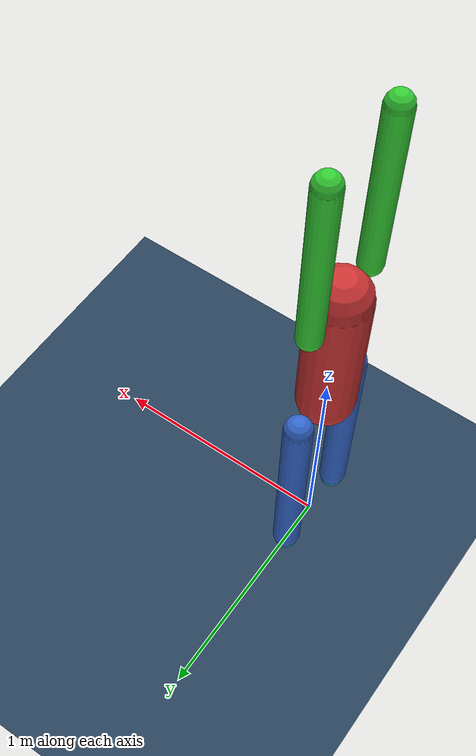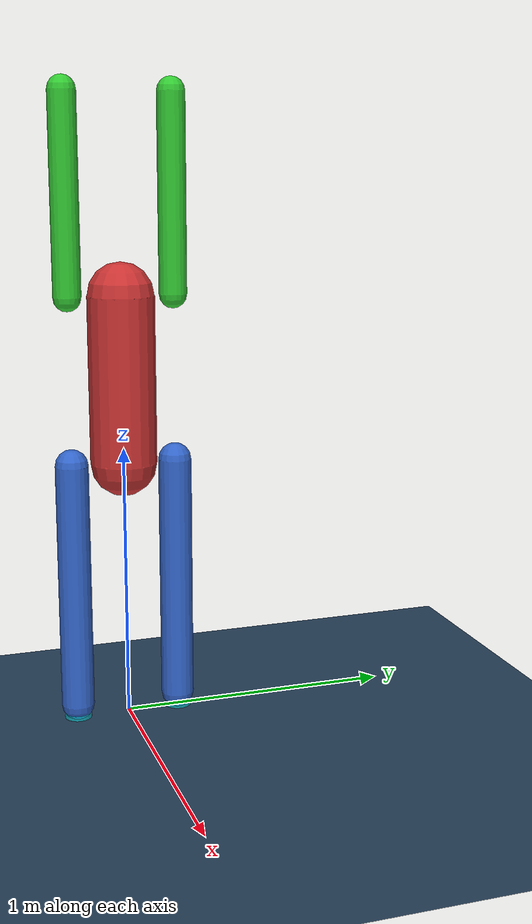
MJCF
<!-- MuJoCo Model for the 5-Link Cartwheel System (v18 - SUPER STRONG MOTORS) -->
<mujoco model="FiveLinkHumanoid">

    <compiler angle="degree" inertiafromgeom="true" meshdir="assets" discardvisual="false"/>
    <option timestep="0.005" gravity="0 0 -9.81"/>

    <default>
        <!-- Increased armature for stability with high torque -->
        <joint limited="true"/>
        <geom friction="0.7 0.005 0.0001"/>
    </default>

    <visual>
        <map znear="0.01"/>
        <quality shadowsize="2048"/>
    </visual>

    <asset>
        <texture name="texplane" type="2d" builtin="checker" rgb1=".2 .3 .4" rgb2=".1 .2 .3" width="100" height="100"/>
        <material name="MatPlane" texture="texplane" shininess="0.1" specular="0.1" reflectance="0.5"/>
        <material name="TorsoMat" rgba="0.8 0.2 0.2 1"/>
        <material name="LegMat"   rgba="0.2 0.4 0.8 1"/>
        <material name="ArmMat"   rgba="0.2 0.8 0.2 1"/>
    </asset>

    <worldbody>
        <geom name="ground" type="plane" size="0 0 1" material="MatPlane" condim="3"/>

        <!-- Root Body: Torso (Start at 1.25m) -->
        <body name="torso" pos="0 0 1.25">

            <!-- PLANAR JOINTS -->
            <joint name="root_y" type="slide" axis="0 1 0" limited="false"/>
            <joint name="root_z" type="slide" axis="0 0 1" limited="false"/>
            <joint name="root_roll" type="hinge" axis="1 0 0" limited="false"/>

            <geom name="torso_geom" type="capsule" size="0.12 0.3" mass="36" material="TorsoMat"/>

            <!-- ARMS (Sideways Config) -->
            <body name="right_arm" pos="0 -0.19 0.3">
                <joint name="joint_q1" type="hinge" axis="1 0 0" range="10 160"/>
                <geom name="right_arm_geom" type="capsule" fromto="0 0 0 0 0 0.7" size="0.05" mass="4" material="ArmMat"/>
                <site name="right_hand_site" pos="0 0 0.7" size="0.04" type="sphere" rgba="0.9 0.9 0 0.5"/>
            </body>

            <body name="left_arm" pos="0 0.19 0.3">
                <joint name="joint_q2" type="hinge" axis="-1 0 0" range="10 160"/>
                <geom name="left_arm_geom" type="capsule" fromto="0 0 0 0 0 0.7" size="0.05" mass="4" material="ArmMat"/>
                <site name="left_hand_site" pos="0 0 0.7" size="0.04" type="sphere" rgba="0.9 0.9 0 0.5"/>
            </body>

            <!-- LEGS (Sideways Config) -->
            <body name="right_leg" pos="0 -0.19 -0.3">
                <joint name="joint_q3" type="hinge" axis="-1 0 0" range="-10 90"/>
                <geom name="right_leg_geom" type="capsule" fromto="0 0 0 0 0 -0.9" size="0.06" mass="12" material="LegMat"/>
                <site name="right_foot_site" pos="0 0 -0.95" size="0.05" type="sphere" rgba="0 0.9 0.9 0.5"/>
            </body>

            <body name="left_leg" pos="0 0.19 -0.3">
                <joint name="joint_q4" type="hinge" axis="1 0 0" range="-10 90"/>
                <geom name="left_leg_geom" type="capsule" fromto="0 0 0 0 0 -0.9" size="0.06" mass="12" material="LegMat"/>
                <site name="left_foot_site" pos="0 0 -0.95" size="0.05" type="sphere" rgba="0 0.9 0.9 0.5"/>
            </body>

        </body>
    </worldbody>

    <actuator>
        <!-- BOOSTED TORQUE: 500 for arms, 1000 for legs -->
        <!-- This ensures it has enough power to kick off the ground explosively -->
        <motor name="m_q1" joint="joint_q1" ctrlrange="-500 500"/>
        <motor name="m_q2" joint="joint_q2" ctrlrange="-500 500"/>
        <motor name="m_q3" joint="joint_q3" ctrlrange="-1000 1000"/>
        <motor name="m_q4" joint="joint_q4" ctrlrange="-1000 1000"/>
    </actuator>

    <sensor>
        <jointpos name="q1_pos" joint="joint_q1"/>
        <jointvel name="q1_vel" joint="joint_q1"/>
        <jointpos name="q2_pos" joint="joint_q2"/>
        <jointvel name="q2_vel" joint="joint_q2"/>
        <jointpos name="q3_pos" joint="joint_q3"/>
        <jointvel name="q3_vel" joint="joint_q3"/>
        <jointpos name="q4_pos" joint="joint_q4"/>
        <jointvel name="q4_vel" joint="joint_q4"/>

        <touch name="touch_right_hand" site="right_hand_site"/>
        <touch name="touch_left_hand"  site="left_hand_site"/>
        <touch name="touch_right_foot" site="right_foot_site"/>
        <touch name="touch_left_foot"  site="left_foot_site"/>
    </sensor>

</mujoco>
